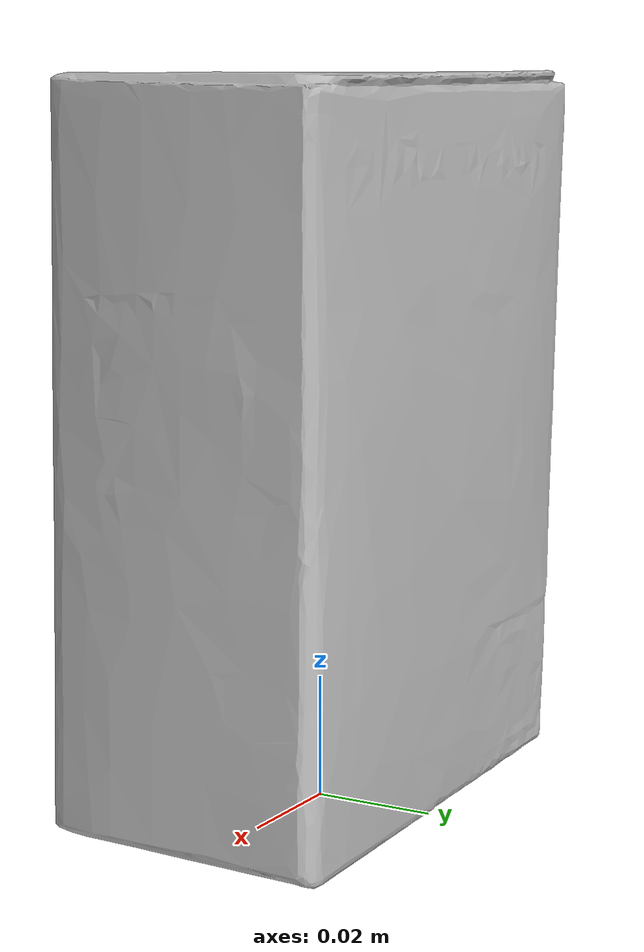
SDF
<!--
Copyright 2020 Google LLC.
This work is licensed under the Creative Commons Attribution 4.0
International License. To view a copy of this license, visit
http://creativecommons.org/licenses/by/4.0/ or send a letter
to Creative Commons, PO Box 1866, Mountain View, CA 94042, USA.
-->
<?xml version="1.0" ?>
<sdf version="1.6">
  <model name="Office_Depot_Canon_CL_41_Remanufactured_Ink_Cartridge_TriColor">
    <link name="link_0">
      <visual name="visual">
        <geometry>
          <mesh>
            <uri>meshes/model.obj</uri>
          </mesh>
        </geometry>
      </visual>
      <collision name="collision_0">
        <geometry>
          <mesh>
            <uri>meshes/model.obj</uri>
          </mesh>
        </geometry>
      </collision>
    </link>
  </model>
</sdf>
